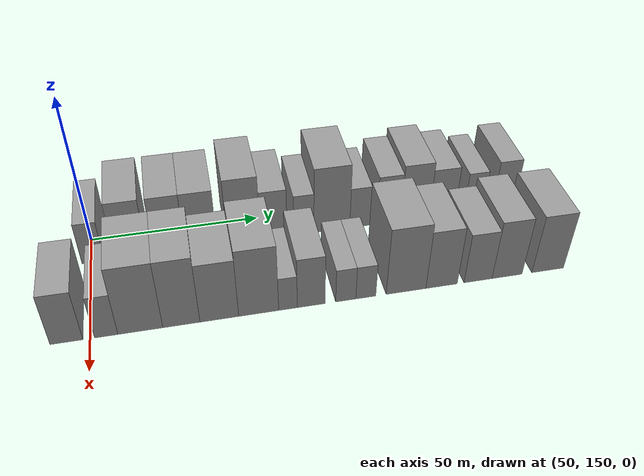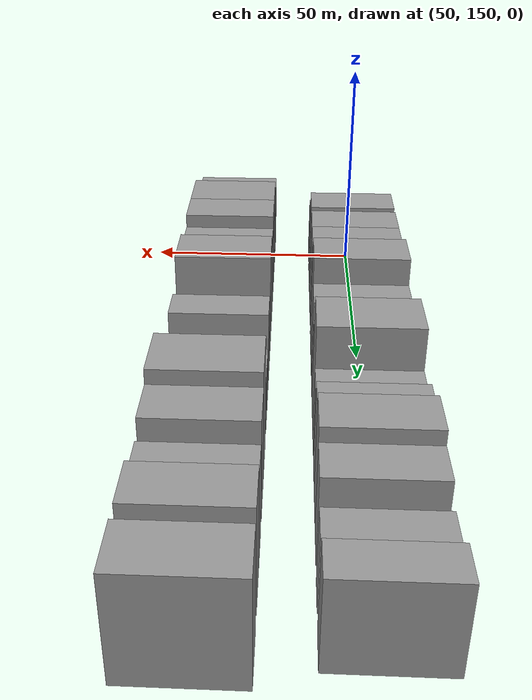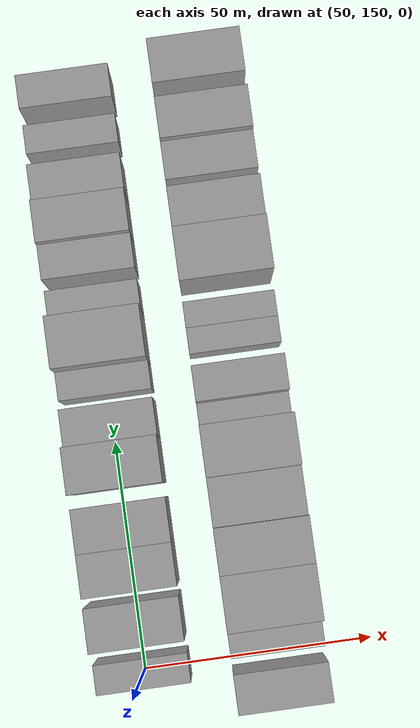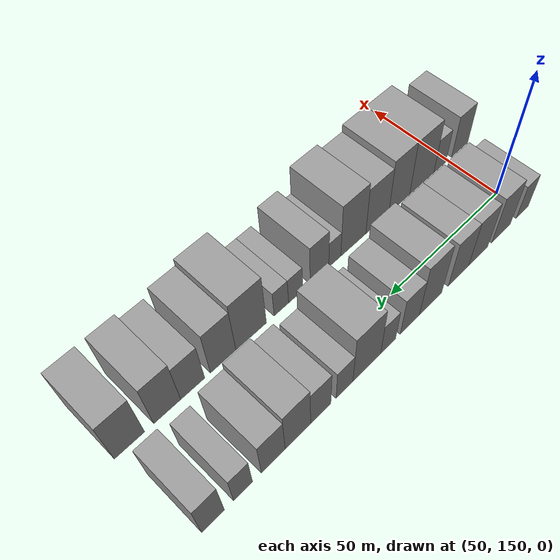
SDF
<sdf version="1.6">
 <world name="default">
  <model name="building_42">
   <static>1</static>
   <pose>50.0000 150.5750 0 0.000000 0.000000 0.000000</pose>
   <link name="link">
    <pose>0 0 7.50 0 0 0</pose>
    <collision name="collision"><geometry><box><size>20.0000 6.2755 15.0000</size></box></geometry></collision>
    <visual name="visual">
     <cast_shadows>0</cast_shadows>
     <geometry><box><size>20.0000 6.2755 15.0000</size></box></geometry>
     <material>
      <script>
       <uri>model://grey_wall/materials/scripts</uri>
       <uri>model://grey_wall/materials/textures</uri>
       <name>vrc/grey_wall</name>
      </script>
     </material>
    </visual>
   </link>
  </model>
  <model name="building_43">
   <static>1</static>
   <pose>50.0000 161.3893 0 0.000000 0.000000 0.000000</pose>
   <link name="link">
    <pose>0 0 10.50 0 0 0</pose>
    <collision name="collision"><geometry><box><size>20.0000 9.3530 21.0000</size></box></geometry></collision>
    <visual name="visual">
     <cast_shadows>0</cast_shadows>
     <geometry><box><size>20.0000 9.3530 21.0000</size></box></geometry>
     <material>
      <script>
       <uri>model://grey_wall/materials/scripts</uri>
       <uri>model://grey_wall/materials/textures</uri>
       <name>vrc/grey_wall</name>
      </script>
     </material>
    </visual>
   </link>
  </model>
  <model name="building_44">
   <static>1</static>
   <pose>50.0000 172.6418 0 0.000000 0.000000 0.000000</pose>
   <link name="link">
    <pose>0 0 10.50 0 0 0</pose>
    <collision name="collision"><geometry><box><size>20.0000 9.1519 21.0000</size></box></geometry></collision>
    <visual name="visual">
     <cast_shadows>0</cast_shadows>
     <geometry><box><size>20.0000 9.1519 21.0000</size></box></geometry>
     <material>
      <script>
       <uri>model://grey_wall/materials/scripts</uri>
       <uri>model://grey_wall/materials/textures</uri>
       <name>vrc/grey_wall</name>
      </script>
     </material>
    </visual>
   </link>
  </model>
  <model name="building_45">
   <static>1</static>
   <pose>50.0000 181.9370 0 0.000000 0.000000 0.000000</pose>
   <link name="link">
    <pose>0 0 10.50 0 0 0</pose>
    <collision name="collision"><geometry><box><size>20.0000 9.4385 21.0000</size></box></geometry></collision>
    <visual name="visual">
     <cast_shadows>0</cast_shadows>
     <geometry><box><size>20.0000 9.4385 21.0000</size></box></geometry>
     <material>
      <script>
       <uri>model://grey_wall/materials/scripts</uri>
       <uri>model://grey_wall/materials/textures</uri>
       <name>vrc/grey_wall</name>
      </script>
     </material>
    </visual>
   </link>
  </model>
  <model name="building_46">
   <static>1</static>
   <pose>50.0000 194.6223 0 0.000000 0.000000 0.000000</pose>
   <link name="link">
    <pose>0 0 12.00 0 0 0</pose>
    <collision name="collision"><geometry><box><size>20.0000 9.9322 24.0000</size></box></geometry></collision>
    <visual name="visual">
     <cast_shadows>0</cast_shadows>
     <geometry><box><size>20.0000 9.9322 24.0000</size></box></geometry>
     <material>
      <script>
       <uri>model://grey_wall/materials/scripts</uri>
       <uri>model://grey_wall/materials/textures</uri>
       <name>vrc/grey_wall</name>
      </script>
     </material>
    </visual>
   </link>
  </model>
  <model name="building_47">
   <static>1</static>
   <pose>50.0000 203.6791 0 0.000000 0.000000 0.000000</pose>
   <link name="link">
    <pose>0 0 9.00 0 0 0</pose>
    <collision name="collision"><geometry><box><size>20.0000 8.1814 18.0000</size></box></geometry></collision>
    <visual name="visual">
     <cast_shadows>0</cast_shadows>
     <geometry><box><size>20.0000 8.1814 18.0000</size></box></geometry>
     <material>
      <script>
       <uri>model://grey_wall/materials/scripts</uri>
       <uri>model://grey_wall/materials/textures</uri>
       <name>vrc/grey_wall</name>
      </script>
     </material>
    </visual>
   </link>
  </model>
  <model name="building_48">
   <static>1</static>
   <pose>50.0000 212.8587 0 0.000000 0.000000 0.000000</pose>
   <link name="link">
    <pose>0 0 7.50 0 0 0</pose>
    <collision name="collision"><geometry><box><size>20.0000 6.1778 15.0000</size></box></geometry></collision>
    <visual name="visual">
     <cast_shadows>0</cast_shadows>
     <geometry><box><size>20.0000 6.1778 15.0000</size></box></geometry>
     <material>
      <script>
       <uri>model://grey_wall/materials/scripts</uri>
       <uri>model://grey_wall/materials/textures</uri>
       <name>vrc/grey_wall</name>
      </script>
     </material>
    </visual>
   </link>
  </model>
  <model name="building_49">
   <static>1</static>
   <pose>50.0000 221.5191 0 0.000000 0.000000 0.000000</pose>
   <link name="link">
    <pose>0 0 12.00 0 0 0</pose>
    <collision name="collision"><geometry><box><size>20.0000 11.1430 24.0000</size></box></geometry></collision>
    <visual name="visual">
     <cast_shadows>0</cast_shadows>
     <geometry><box><size>20.0000 11.1430 24.0000</size></box></geometry>
     <material>
      <script>
       <uri>model://grey_wall/materials/scripts</uri>
       <uri>model://grey_wall/materials/textures</uri>
       <name>vrc/grey_wall</name>
      </script>
     </material>
    </visual>
   </link>
  </model>
  <model name="building_50">
   <static>1</static>
   <pose>50.0000 230.3307 0 0.000000 0.000000 0.000000</pose>
   <link name="link">
    <pose>0 0 7.50 0 0 0</pose>
    <collision name="collision"><geometry><box><size>20.0000 6.4800 15.0000</size></box></geometry></collision>
    <visual name="visual">
     <cast_shadows>0</cast_shadows>
     <geometry><box><size>20.0000 6.4800 15.0000</size></box></geometry>
     <material>
      <script>
       <uri>model://grey_wall/materials/scripts</uri>
       <uri>model://grey_wall/materials/textures</uri>
       <name>vrc/grey_wall</name>
      </script>
     </material>
    </visual>
   </link>
  </model>
  <model name="building_51">
   <static>1</static>
   <pose>50.0000 239.3495 0 0.000000 0.000000 0.000000</pose>
   <link name="link">
    <pose>0 0 9.00 0 0 0</pose>
    <collision name="collision"><geometry><box><size>20.0000 7.5577 18.0000</size></box></geometry></collision>
    <visual name="visual">
     <cast_shadows>0</cast_shadows>
     <geometry><box><size>20.0000 7.5577 18.0000</size></box></geometry>
     <material>
      <script>
       <uri>model://grey_wall/materials/scripts</uri>
       <uri>model://grey_wall/materials/textures</uri>
       <name>vrc/grey_wall</name>
      </script>
     </material>
    </visual>
   </link>
  </model>
  <model name="building_52">
   <static>1</static>
   <pose>50.0000 247.7232 0 0.000000 0.000000 0.000000</pose>
   <link name="link">
    <pose>0 0 10.50 0 0 0</pose>
    <collision name="collision"><geometry><box><size>20.0000 9.1896 21.0000</size></box></geometry></collision>
    <visual name="visual">
     <cast_shadows>0</cast_shadows>
     <geometry><box><size>20.0000 9.1896 21.0000</size></box></geometry>
     <material>
      <script>
       <uri>model://grey_wall/materials/scripts</uri>
       <uri>model://grey_wall/materials/textures</uri>
       <name>vrc/grey_wall</name>
      </script>
     </material>
    </visual>
   </link>
  </model>
  <model name="building_53">
   <static>1</static>
   <pose>50.0000 256.4571 0 0.000000 0.000000 0.000000</pose>
   <link name="link">
    <pose>0 0 9.00 0 0 0</pose>
    <collision name="collision"><geometry><box><size>20.0000 8.2782 18.0000</size></box></geometry></collision>
    <visual name="visual">
     <cast_shadows>0</cast_shadows>
     <geometry><box><size>20.0000 8.2782 18.0000</size></box></geometry>
     <material>
      <script>
       <uri>model://grey_wall/materials/scripts</uri>
       <uri>model://grey_wall/materials/textures</uri>
       <name>vrc/grey_wall</name>
      </script>
     </material>
    </visual>
   </link>
  </model>
  <model name="building_54">
   <static>1</static>
   <pose>50.0000 266.7595 0 0.000000 0.000000 0.000000</pose>
   <link name="link">
    <pose>0 0 7.50 0 0 0</pose>
    <collision name="collision"><geometry><box><size>20.0000 6.3266 15.0000</size></box></geometry></collision>
    <visual name="visual">
     <cast_shadows>0</cast_shadows>
     <geometry><box><size>20.0000 6.3266 15.0000</size></box></geometry>
     <material>
      <script>
       <uri>model://grey_wall/materials/scripts</uri>
       <uri>model://grey_wall/materials/textures</uri>
       <name>vrc/grey_wall</name>
      </script>
     </material>
    </visual>
   </link>
  </model>
  <model name="building_55">
   <static>1</static>
   <pose>50.0000 276.5610 0 0.000000 0.000000 0.000000</pose>
   <link name="link">
    <pose>0 0 9.00 0 0 0</pose>
    <collision name="collision"><geometry><box><size>20.0000 7.2764 18.0000</size></box></geometry></collision>
    <visual name="visual">
     <cast_shadows>0</cast_shadows>
     <geometry><box><size>20.0000 7.2764 18.0000</size></box></geometry>
     <material>
      <script>
       <uri>model://grey_wall/materials/scripts</uri>
       <uri>model://grey_wall/materials/textures</uri>
       <name>vrc/grey_wall</name>
      </script>
     </material>
    </visual>
   </link>
  </model>
  <model name="building_99">
   <static>1</static>
   <pose>79.0000 143.9548 0 0.000000 0.000000 0.000000</pose>
   <link name="link">
    <pose>0 0 9.00 0 0 0</pose>
    <collision name="collision"><geometry><box><size>20.0000 8.4078 18.0000</size></box></geometry></collision>
    <visual name="visual">
     <cast_shadows>0</cast_shadows>
     <geometry><box><size>20.0000 8.4078 18.0000</size></box></geometry>
     <material>
      <script>
       <uri>model://grey_wall/materials/scripts</uri>
       <uri>model://grey_wall/materials/textures</uri>
       <name>vrc/grey_wall</name>
      </script>
     </material>
    </visual>
   </link>
  </model>
  <model name="building_100">
   <static>1</static>
   <pose>79.0000 154.1749 0 0.000000 0.000000 0.000000</pose>
   <link name="link">
    <pose>0 0 7.50 0 0 0</pose>
    <collision name="collision"><geometry><box><size>20.0000 6.0323 15.0000</size></box></geometry></collision>
    <visual name="visual">
     <cast_shadows>0</cast_shadows>
     <geometry><box><size>20.0000 6.0323 15.0000</size></box></geometry>
     <material>
      <script>
       <uri>model://grey_wall/materials/scripts</uri>
       <uri>model://grey_wall/materials/textures</uri>
       <name>vrc/grey_wall</name>
      </script>
     </material>
    </visual>
   </link>
  </model>
  <model name="building_101">
   <static>1</static>
   <pose>79.0000 163.0858 0 0.000000 0.000000 0.000000</pose>
   <link name="link">
    <pose>0 0 12.00 0 0 0</pose>
    <collision name="collision"><geometry><box><size>20.0000 11.7895 24.0000</size></box></geometry></collision>
    <visual name="visual">
     <cast_shadows>0</cast_shadows>
     <geometry><box><size>20.0000 11.7895 24.0000</size></box></geometry>
     <material>
      <script>
       <uri>model://grey_wall/materials/scripts</uri>
       <uri>model://grey_wall/materials/textures</uri>
       <name>vrc/grey_wall</name>
      </script>
     </material>
    </visual>
   </link>
  </model>
  <model name="building_102">
   <static>1</static>
   <pose>79.0000 173.9194 0 0.000000 0.000000 0.000000</pose>
   <link name="link">
    <pose>0 0 12.00 0 0 0</pose>
    <collision name="collision"><geometry><box><size>20.0000 9.8777 24.0000</size></box></geometry></collision>
    <visual name="visual">
     <cast_shadows>0</cast_shadows>
     <geometry><box><size>20.0000 9.8777 24.0000</size></box></geometry>
     <material>
      <script>
       <uri>model://grey_wall/materials/scripts</uri>
       <uri>model://grey_wall/materials/textures</uri>
       <name>vrc/grey_wall</name>
      </script>
     </material>
    </visual>
   </link>
  </model>
  <model name="building_103">
   <static>1</static>
   <pose>79.0000 184.0838 0 0.000000 0.000000 0.000000</pose>
   <link name="link">
    <pose>0 0 10.50 0 0 0</pose>
    <collision name="collision"><geometry><box><size>20.0000 10.4511 21.0000</size></box></geometry></collision>
    <visual name="visual">
     <cast_shadows>0</cast_shadows>
     <geometry><box><size>20.0000 10.4511 21.0000</size></box></geometry>
     <material>
      <script>
       <uri>model://grey_wall/materials/scripts</uri>
       <uri>model://grey_wall/materials/textures</uri>
       <name>vrc/grey_wall</name>
      </script>
     </material>
    </visual>
   </link>
  </model>
  <model name="building_104">
   <static>1</static>
   <pose>79.0000 194.8080 0 0.000000 0.000000 0.000000</pose>
   <link name="link">
    <pose>0 0 12.00 0 0 0</pose>
    <collision name="collision"><geometry><box><size>20.0000 10.9971 24.0000</size></box></geometry></collision>
    <visual name="visual">
     <cast_shadows>0</cast_shadows>
     <geometry><box><size>20.0000 10.9971 24.0000</size></box></geometry>
     <material>
      <script>
       <uri>model://grey_wall/materials/scripts</uri>
       <uri>model://grey_wall/materials/textures</uri>
       <name>vrc/grey_wall</name>
      </script>
     </material>
    </visual>
   </link>
  </model>
  <model name="building_105">
   <static>1</static>
   <pose>79.0000 202.8714 0 0.000000 0.000000 0.000000</pose>
   <link name="link">
    <pose>0 0 6.00 0 0 0</pose>
    <collision name="collision"><geometry><box><size>20.0000 5.1299 12.0000</size></box></geometry></collision>
    <visual name="visual">
     <cast_shadows>0</cast_shadows>
     <geometry><box><size>20.0000 5.1299 12.0000</size></box></geometry>
     <material>
      <script>
       <uri>model://grey_wall/materials/scripts</uri>
       <uri>model://grey_wall/materials/textures</uri>
       <name>vrc/grey_wall</name>
      </script>
     </material>
    </visual>
   </link>
  </model>
  <model name="building_106">
   <static>1</static>
   <pose>79.0000 209.3170 0 0.000000 0.000000 0.000000</pose>
   <link name="link">
    <pose>0 0 9.00 0 0 0</pose>
    <collision name="collision"><geometry><box><size>20.0000 7.7613 18.0000</size></box></geometry></collision>
    <visual name="visual">
     <cast_shadows>0</cast_shadows>
     <geometry><box><size>20.0000 7.7613 18.0000</size></box></geometry>
     <material>
      <script>
       <uri>model://grey_wall/materials/scripts</uri>
       <uri>model://grey_wall/materials/textures</uri>
       <name>vrc/grey_wall</name>
      </script>
     </material>
    </visual>
   </link>
  </model>
  <model name="building_107">
   <static>1</static>
   <pose>79.0000 219.0517 0 0.000000 0.000000 0.000000</pose>
   <link name="link">
    <pose>0 0 6.00 0 0 0</pose>
    <collision name="collision"><geometry><box><size>20.0000 5.7080 12.0000</size></box></geometry></collision>
    <visual name="visual">
     <cast_shadows>0</cast_shadows>
     <geometry><box><size>20.0000 5.7080 12.0000</size></box></geometry>
     <material>
      <script>
       <uri>model://grey_wall/materials/scripts</uri>
       <uri>model://grey_wall/materials/textures</uri>
       <name>vrc/grey_wall</name>
      </script>
     </material>
    </visual>
   </link>
  </model>
  <model name="building_108">
   <static>1</static>
   <pose>79.0000 224.7447 0 0.000000 0.000000 0.000000</pose>
   <link name="link">
    <pose>0 0 6.00 0 0 0</pose>
    <collision name="collision"><geometry><box><size>20.0000 5.6780 12.0000</size></box></geometry></collision>
    <visual name="visual">
     <cast_shadows>0</cast_shadows>
     <geometry><box><size>20.0000 5.6780 12.0000</size></box></geometry>
     <material>
      <script>
       <uri>model://grey_wall/materials/scripts</uri>
       <uri>model://grey_wall/materials/textures</uri>
       <name>vrc/grey_wall</name>
      </script>
     </material>
    </visual>
   </link>
  </model>
  <model name="building_109">
   <static>1</static>
   <pose>79.0000 236.3386 0 0.000000 0.000000 0.000000</pose>
   <link name="link">
    <pose>0 0 12.00 0 0 0</pose>
    <collision name="collision"><geometry><box><size>20.0000 11.5098 24.0000</size></box></geometry></collision>
    <visual name="visual">
     <cast_shadows>0</cast_shadows>
     <geometry><box><size>20.0000 11.5098 24.0000</size></box></geometry>
     <material>
      <script>
       <uri>model://grey_wall/materials/scripts</uri>
       <uri>model://grey_wall/materials/textures</uri>
       <name>vrc/grey_wall</name>
      </script>
     </material>
    </visual>
   </link>
  </model>
  <model name="building_110">
   <static>1</static>
   <pose>79.0000 246.7069 0 0.000000 0.000000 0.000000</pose>
   <link name="link">
    <pose>0 0 10.50 0 0 0</pose>
    <collision name="collision"><geometry><box><size>20.0000 9.2268 21.0000</size></box></geometry></collision>
    <visual name="visual">
     <cast_shadows>0</cast_shadows>
     <geometry><box><size>20.0000 9.2268 21.0000</size></box></geometry>
     <material>
      <script>
       <uri>model://grey_wall/materials/scripts</uri>
       <uri>model://grey_wall/materials/textures</uri>
       <name>vrc/grey_wall</name>
      </script>
     </material>
    </visual>
   </link>
  </model>
  <model name="building_111">
   <static>1</static>
   <pose>79.0000 257.5002 0 0.000000 0.000000 0.000000</pose>
   <link name="link">
    <pose>0 0 9.00 0 0 0</pose>
    <collision name="collision"><geometry><box><size>20.0000 8.3599 18.0000</size></box></geometry></collision>
    <visual name="visual">
     <cast_shadows>0</cast_shadows>
     <geometry><box><size>20.0000 8.3599 18.0000</size></box></geometry>
     <material>
      <script>
       <uri>model://grey_wall/materials/scripts</uri>
       <uri>model://grey_wall/materials/textures</uri>
       <name>vrc/grey_wall</name>
      </script>
     </material>
    </visual>
   </link>
  </model>
  <model name="building_112">
   <static>1</static>
   <pose>79.0000 266.2111 0 0.000000 0.000000 0.000000</pose>
   <link name="link">
    <pose>0 0 10.50 0 0 0</pose>
    <collision name="collision"><geometry><box><size>20.0000 9.0618 21.0000</size></box></geometry></collision>
    <visual name="visual">
     <cast_shadows>0</cast_shadows>
     <geometry><box><size>20.0000 9.0618 21.0000</size></box></geometry>
     <material>
      <script>
       <uri>model://grey_wall/materials/scripts</uri>
       <uri>model://grey_wall/materials/textures</uri>
       <name>vrc/grey_wall</name>
      </script>
     </material>
    </visual>
   </link>
  </model>
  <model name="building_113">
   <static>1</static>
   <pose>79.0000 278.5878 0 0.000000 0.000000 0.000000</pose>
   <link name="link">
    <pose>0 0 10.50 0 0 0</pose>
    <collision name="collision"><geometry><box><size>20.0000 9.6917 21.0000</size></box></geometry></collision>
    <visual name="visual">
     <cast_shadows>0</cast_shadows>
     <geometry><box><size>20.0000 9.6917 21.0000</size></box></geometry>
     <material>
      <script>
       <uri>model://grey_wall/materials/scripts</uri>
       <uri>model://grey_wall/materials/textures</uri>
       <name>vrc/grey_wall</name>
      </script>
     </material>
    </visual>
   </link>
  </model>
 </world>
</sdf>
